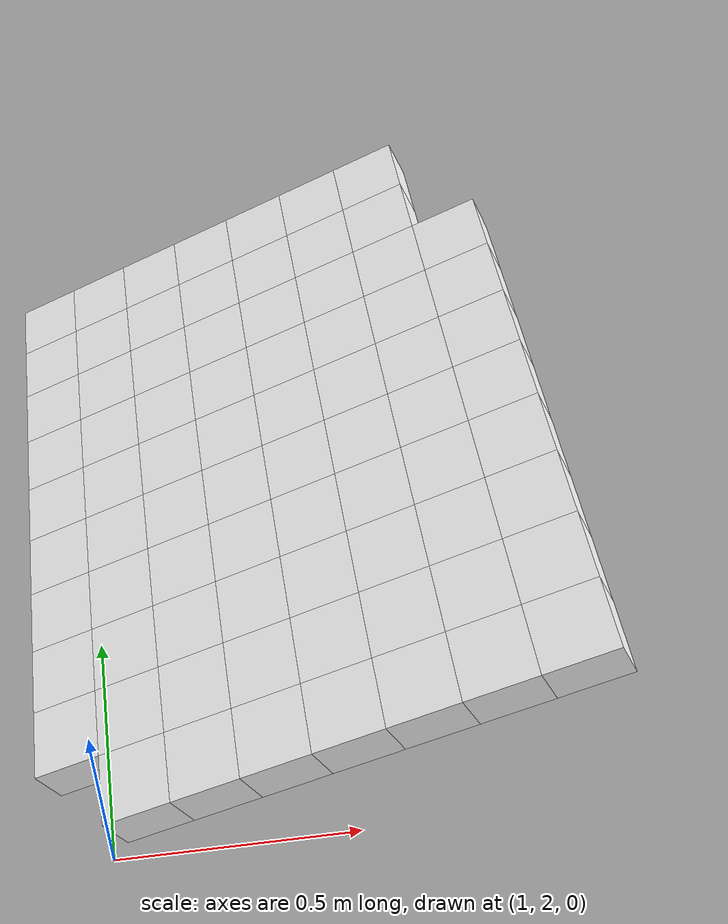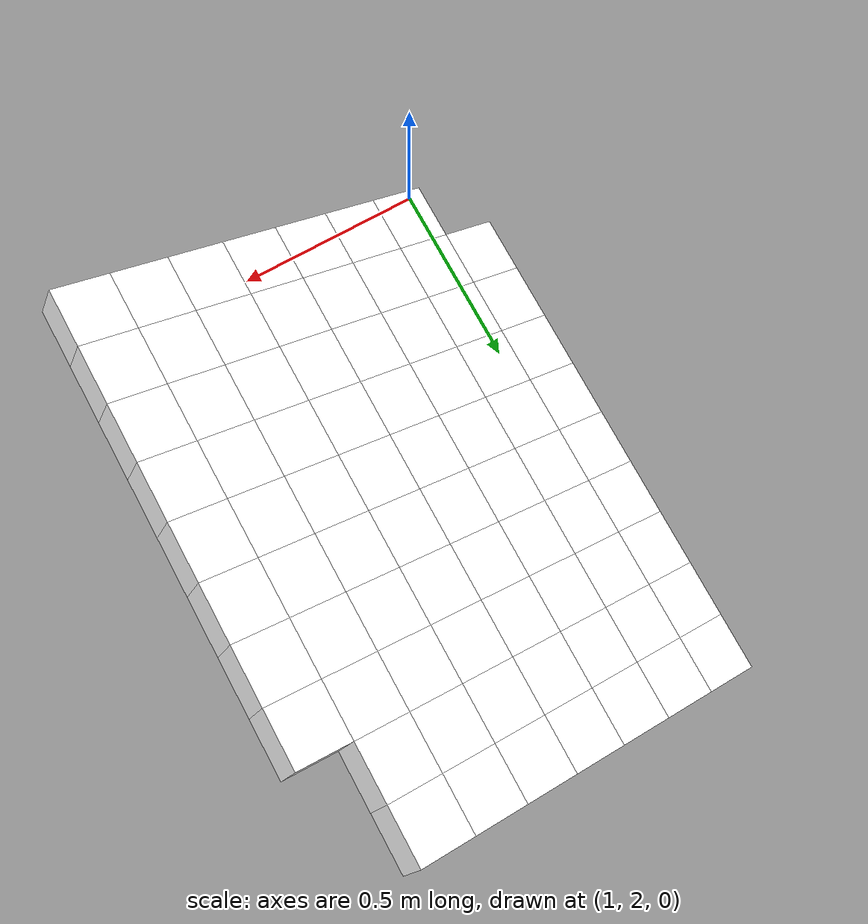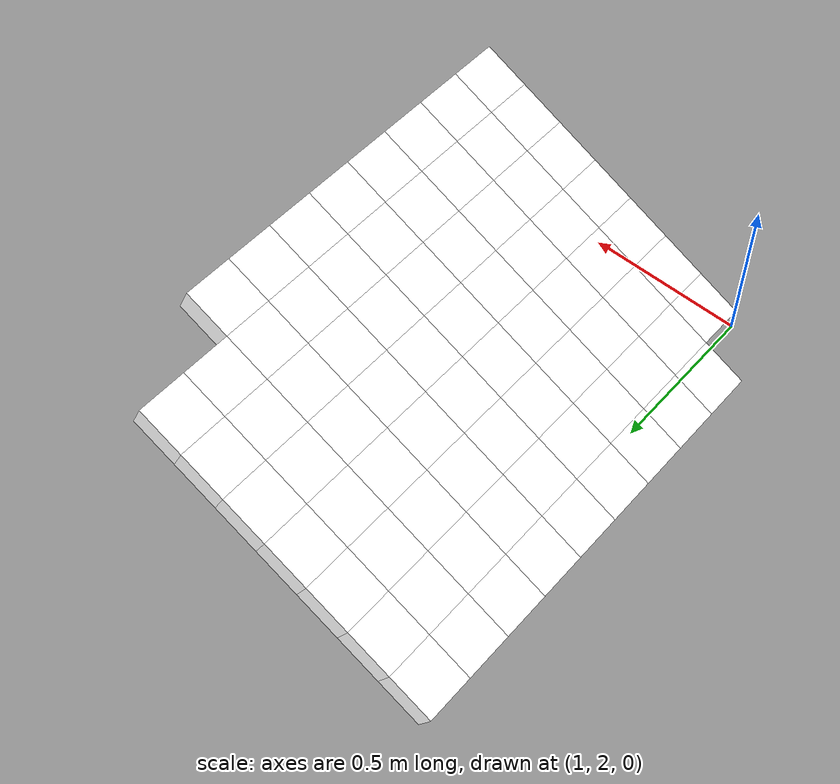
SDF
<sdf version="1.7">
 <world name="default">
  <include><uri>model://sun</uri></include>
  <model name="static_environment">
   <static>true</static>
   <link name="region_601">
    <pose>1.0762143930059413 2.0999999999999996 0.09778168674698906 0.0 -0.45 0.0</pose>
    <collision name="region_601_collision">
     <geometry><box><size>0.15 0.15 0.1</size></box></geometry>
     <surface><friction><ode><mu>1.0</mu><mu2>1.0</mu2></ode></friction></surface>
    </collision>
    <visual name="region_601_visual">
     <geometry><box><size>0.15 0.15 0.1</size></box></geometry>
     <material><ambient>1.0 1.0 1.0 1.0</ambient><diffuse>1.0 1.0 1.0 1.0</diffuse></material>
    </visual>
   </link>
   <link name="region_602">
    <pose>1.211281458358843 2.0999999999999996 0.16302651686367364 0.0 -0.45 0.0</pose>
    <collision name="region_602_collision">
     <geometry><box><size>0.15 0.15 0.1</size></box></geometry>
     <surface><friction><ode><mu>1.0</mu><mu2>1.0</mu2></ode></friction></surface>
    </collision>
    <visual name="region_602_visual">
     <geometry><box><size>0.15 0.15 0.1</size></box></geometry>
     <material><ambient>1.0 1.0 1.0 1.0</ambient><diffuse>1.0 1.0 1.0 1.0</diffuse></material>
    </visual>
   </link>
   <link name="region_603">
    <pose>1.346348523711744 2.0999999999999996 0.228271346980358 0.0 -0.45 0.0</pose>
    <collision name="region_603_collision">
     <geometry><box><size>0.15 0.15 0.1</size></box></geometry>
     <surface><friction><ode><mu>1.0</mu><mu2>1.0</mu2></ode></friction></surface>
    </collision>
    <visual name="region_603_visual">
     <geometry><box><size>0.15 0.15 0.1</size></box></geometry>
     <material><ambient>1.0 1.0 1.0 1.0</ambient><diffuse>1.0 1.0 1.0 1.0</diffuse></material>
    </visual>
   </link>
   <link name="region_604">
    <pose>1.4814155890646457 2.0999999999999996 0.2935161770970426 0.0 -0.45 0.0</pose>
    <collision name="region_604_collision">
     <geometry><box><size>0.15 0.15 0.1</size></box></geometry>
     <surface><friction><ode><mu>1.0</mu><mu2>1.0</mu2></ode></friction></surface>
    </collision>
    <visual name="region_604_visual">
     <geometry><box><size>0.15 0.15 0.1</size></box></geometry>
     <material><ambient>1.0 1.0 1.0 1.0</ambient><diffuse>1.0 1.0 1.0 1.0</diffuse></material>
    </visual>
   </link>
   <link name="region_605">
    <pose>1.6164826544175472 2.0999999999999996 0.35876100721372695 0.0 -0.45 0.0</pose>
    <collision name="region_605_collision">
     <geometry><box><size>0.15 0.15 0.1</size></box></geometry>
     <surface><friction><ode><mu>1.0</mu><mu2>1.0</mu2></ode></friction></surface>
    </collision>
    <visual name="region_605_visual">
     <geometry><box><size>0.15 0.15 0.1</size></box></geometry>
     <material><ambient>1.0 1.0 1.0 1.0</ambient><diffuse>1.0 1.0 1.0 1.0</diffuse></material>
    </visual>
   </link>
   <link name="region_606">
    <pose>1.7515497197704484 2.0999999999999996 0.42400583733041153 0.0 -0.45 0.0</pose>
    <collision name="region_606_collision">
     <geometry><box><size>0.15 0.15 0.1</size></box></geometry>
     <surface><friction><ode><mu>1.0</mu><mu2>1.0</mu2></ode></friction></surface>
    </collision>
    <visual name="region_606_visual">
     <geometry><box><size>0.15 0.15 0.1</size></box></geometry>
     <material><ambient>1.0 1.0 1.0 1.0</ambient><diffuse>1.0 1.0 1.0 1.0</diffuse></material>
    </visual>
   </link>
   <link name="region_607">
    <pose>1.88661678512335 2.0999999999999996 0.4892506674470961 0.0 -0.45 0.0</pose>
    <collision name="region_607_collision">
     <geometry><box><size>0.15 0.15 0.1</size></box></geometry>
     <surface><friction><ode><mu>1.0</mu><mu2>1.0</mu2></ode></friction></surface>
    </collision>
    <visual name="region_607_visual">
     <geometry><box><size>0.15 0.15 0.1</size></box></geometry>
     <material><ambient>1.0 1.0 1.0 1.0</ambient><diffuse>1.0 1.0 1.0 1.0</diffuse></material>
    </visual>
   </link>
   <link name="region_620">
    <pose>0.9411473276530398 2.2499999999999996 0.03253685663030448 0.0 -0.45 0.0</pose>
    <collision name="region_620_collision">
     <geometry><box><size>0.15 0.15 0.1</size></box></geometry>
     <surface><friction><ode><mu>1.0</mu><mu2>1.0</mu2></ode></friction></surface>
    </collision>
    <visual name="region_620_visual">
     <geometry><box><size>0.15 0.15 0.1</size></box></geometry>
     <material><ambient>1.0 1.0 1.0 1.0</ambient><diffuse>1.0 1.0 1.0 1.0</diffuse></material>
    </visual>
   </link>
   <link name="region_621">
    <pose>1.0762143930059413 2.2499999999999996 0.09778168674698906 0.0 -0.45 0.0</pose>
    <collision name="region_621_collision">
     <geometry><box><size>0.15 0.15 0.1</size></box></geometry>
     <surface><friction><ode><mu>1.0</mu><mu2>1.0</mu2></ode></friction></surface>
    </collision>
    <visual name="region_621_visual">
     <geometry><box><size>0.15 0.15 0.1</size></box></geometry>
     <material><ambient>1.0 1.0 1.0 1.0</ambient><diffuse>1.0 1.0 1.0 1.0</diffuse></material>
    </visual>
   </link>
   <link name="region_622">
    <pose>1.211281458358843 2.2499999999999996 0.16302651686367364 0.0 -0.45 0.0</pose>
    <collision name="region_622_collision">
     <geometry><box><size>0.15 0.15 0.1</size></box></geometry>
     <surface><friction><ode><mu>1.0</mu><mu2>1.0</mu2></ode></friction></surface>
    </collision>
    <visual name="region_622_visual">
     <geometry><box><size>0.15 0.15 0.1</size></box></geometry>
     <material><ambient>1.0 1.0 1.0 1.0</ambient><diffuse>1.0 1.0 1.0 1.0</diffuse></material>
    </visual>
   </link>
   <link name="region_623">
    <pose>1.346348523711744 2.2499999999999996 0.228271346980358 0.0 -0.45 0.0</pose>
    <collision name="region_623_collision">
     <geometry><box><size>0.15 0.15 0.1</size></box></geometry>
     <surface><friction><ode><mu>1.0</mu><mu2>1.0</mu2></ode></friction></surface>
    </collision>
    <visual name="region_623_visual">
     <geometry><box><size>0.15 0.15 0.1</size></box></geometry>
     <material><ambient>1.0 1.0 1.0 1.0</ambient><diffuse>1.0 1.0 1.0 1.0</diffuse></material>
    </visual>
   </link>
   <link name="region_624">
    <pose>1.4814155890646457 2.2499999999999996 0.2935161770970426 0.0 -0.45 0.0</pose>
    <collision name="region_624_collision">
     <geometry><box><size>0.15 0.15 0.1</size></box></geometry>
     <surface><friction><ode><mu>1.0</mu><mu2>1.0</mu2></ode></friction></surface>
    </collision>
    <visual name="region_624_visual">
     <geometry><box><size>0.15 0.15 0.1</size></box></geometry>
     <material><ambient>1.0 1.0 1.0 1.0</ambient><diffuse>1.0 1.0 1.0 1.0</diffuse></material>
    </visual>
   </link>
   <link name="region_625">
    <pose>1.6164826544175472 2.2499999999999996 0.35876100721372695 0.0 -0.45 0.0</pose>
    <collision name="region_625_collision">
     <geometry><box><size>0.15 0.15 0.1</size></box></geometry>
     <surface><friction><ode><mu>1.0</mu><mu2>1.0</mu2></ode></friction></surface>
    </collision>
    <visual name="region_625_visual">
     <geometry><box><size>0.15 0.15 0.1</size></box></geometry>
     <material><ambient>1.0 1.0 1.0 1.0</ambient><diffuse>1.0 1.0 1.0 1.0</diffuse></material>
    </visual>
   </link>
   <link name="region_626">
    <pose>1.7515497197704484 2.2499999999999996 0.42400583733041153 0.0 -0.45 0.0</pose>
    <collision name="region_626_collision">
     <geometry><box><size>0.15 0.15 0.1</size></box></geometry>
     <surface><friction><ode><mu>1.0</mu><mu2>1.0</mu2></ode></friction></surface>
    </collision>
    <visual name="region_626_visual">
     <geometry><box><size>0.15 0.15 0.1</size></box></geometry>
     <material><ambient>1.0 1.0 1.0 1.0</ambient><diffuse>1.0 1.0 1.0 1.0</diffuse></material>
    </visual>
   </link>
   <link name="region_627">
    <pose>1.88661678512335 2.2499999999999996 0.4892506674470961 0.0 -0.45 0.0</pose>
    <collision name="region_627_collision">
     <geometry><box><size>0.15 0.15 0.1</size></box></geometry>
     <surface><friction><ode><mu>1.0</mu><mu2>1.0</mu2></ode></friction></surface>
    </collision>
    <visual name="region_627_visual">
     <geometry><box><size>0.15 0.15 0.1</size></box></geometry>
     <material><ambient>1.0 1.0 1.0 1.0</ambient><diffuse>1.0 1.0 1.0 1.0</diffuse></material>
    </visual>
   </link>
   <link name="region_640">
    <pose>0.9411473276530398 2.3999999999999995 0.03253685663030448 0.0 -0.45 0.0</pose>
    <collision name="region_640_collision">
     <geometry><box><size>0.15 0.15 0.1</size></box></geometry>
     <surface><friction><ode><mu>1.0</mu><mu2>1.0</mu2></ode></friction></surface>
    </collision>
    <visual name="region_640_visual">
     <geometry><box><size>0.15 0.15 0.1</size></box></geometry>
     <material><ambient>1.0 1.0 1.0 1.0</ambient><diffuse>1.0 1.0 1.0 1.0</diffuse></material>
    </visual>
   </link>
   <link name="region_641">
    <pose>1.0762143930059413 2.3999999999999995 0.09778168674698906 0.0 -0.45 0.0</pose>
    <collision name="region_641_collision">
     <geometry><box><size>0.15 0.15 0.1</size></box></geometry>
     <surface><friction><ode><mu>1.0</mu><mu2>1.0</mu2></ode></friction></surface>
    </collision>
    <visual name="region_641_visual">
     <geometry><box><size>0.15 0.15 0.1</size></box></geometry>
     <material><ambient>1.0 1.0 1.0 1.0</ambient><diffuse>1.0 1.0 1.0 1.0</diffuse></material>
    </visual>
   </link>
   <link name="region_642">
    <pose>1.211281458358843 2.3999999999999995 0.16302651686367364 0.0 -0.45 0.0</pose>
    <collision name="region_642_collision">
     <geometry><box><size>0.15 0.15 0.1</size></box></geometry>
     <surface><friction><ode><mu>1.0</mu><mu2>1.0</mu2></ode></friction></surface>
    </collision>
    <visual name="region_642_visual">
     <geometry><box><size>0.15 0.15 0.1</size></box></geometry>
     <material><ambient>1.0 1.0 1.0 1.0</ambient><diffuse>1.0 1.0 1.0 1.0</diffuse></material>
    </visual>
   </link>
   <link name="region_643">
    <pose>1.346348523711744 2.3999999999999995 0.228271346980358 0.0 -0.45 0.0</pose>
    <collision name="region_643_collision">
     <geometry><box><size>0.15 0.15 0.1</size></box></geometry>
     <surface><friction><ode><mu>1.0</mu><mu2>1.0</mu2></ode></friction></surface>
    </collision>
    <visual name="region_643_visual">
     <geometry><box><size>0.15 0.15 0.1</size></box></geometry>
     <material><ambient>1.0 1.0 1.0 1.0</ambient><diffuse>1.0 1.0 1.0 1.0</diffuse></material>
    </visual>
   </link>
   <link name="region_644">
    <pose>1.4814155890646457 2.3999999999999995 0.2935161770970426 0.0 -0.45 0.0</pose>
    <collision name="region_644_collision">
     <geometry><box><size>0.15 0.15 0.1</size></box></geometry>
     <surface><friction><ode><mu>1.0</mu><mu2>1.0</mu2></ode></friction></surface>
    </collision>
    <visual name="region_644_visual">
     <geometry><box><size>0.15 0.15 0.1</size></box></geometry>
     <material><ambient>1.0 1.0 1.0 1.0</ambient><diffuse>1.0 1.0 1.0 1.0</diffuse></material>
    </visual>
   </link>
   <link name="region_645">
    <pose>1.6164826544175472 2.3999999999999995 0.35876100721372695 0.0 -0.45 0.0</pose>
    <collision name="region_645_collision">
     <geometry><box><size>0.15 0.15 0.1</size></box></geometry>
     <surface><friction><ode><mu>1.0</mu><mu2>1.0</mu2></ode></friction></surface>
    </collision>
    <visual name="region_645_visual">
     <geometry><box><size>0.15 0.15 0.1</size></box></geometry>
     <material><ambient>1.0 1.0 1.0 1.0</ambient><diffuse>1.0 1.0 1.0 1.0</diffuse></material>
    </visual>
   </link>
   <link name="region_646">
    <pose>1.7515497197704484 2.3999999999999995 0.42400583733041153 0.0 -0.45 0.0</pose>
    <collision name="region_646_collision">
     <geometry><box><size>0.15 0.15 0.1</size></box></geometry>
     <surface><friction><ode><mu>1.0</mu><mu2>1.0</mu2></ode></friction></surface>
    </collision>
    <visual name="region_646_visual">
     <geometry><box><size>0.15 0.15 0.1</size></box></geometry>
     <material><ambient>1.0 1.0 1.0 1.0</ambient><diffuse>1.0 1.0 1.0 1.0</diffuse></material>
    </visual>
   </link>
   <link name="region_647">
    <pose>1.88661678512335 2.3999999999999995 0.4892506674470961 0.0 -0.45 0.0</pose>
    <collision name="region_647_collision">
     <geometry><box><size>0.15 0.15 0.1</size></box></geometry>
     <surface><friction><ode><mu>1.0</mu><mu2>1.0</mu2></ode></friction></surface>
    </collision>
    <visual name="region_647_visual">
     <geometry><box><size>0.15 0.15 0.1</size></box></geometry>
     <material><ambient>1.0 1.0 1.0 1.0</ambient><diffuse>1.0 1.0 1.0 1.0</diffuse></material>
    </visual>
   </link>
   <link name="region_660">
    <pose>0.9411473276530398 2.5499999999999994 0.03253685663030448 0.0 -0.45 0.0</pose>
    <collision name="region_660_collision">
     <geometry><box><size>0.15 0.15 0.1</size></box></geometry>
     <surface><friction><ode><mu>1.0</mu><mu2>1.0</mu2></ode></friction></surface>
    </collision>
    <visual name="region_660_visual">
     <geometry><box><size>0.15 0.15 0.1</size></box></geometry>
     <material><ambient>1.0 1.0 1.0 1.0</ambient><diffuse>1.0 1.0 1.0 1.0</diffuse></material>
    </visual>
   </link>
   <link name="region_661">
    <pose>1.0762143930059413 2.5499999999999994 0.09778168674698906 0.0 -0.45 0.0</pose>
    <collision name="region_661_collision">
     <geometry><box><size>0.15 0.15 0.1</size></box></geometry>
     <surface><friction><ode><mu>1.0</mu><mu2>1.0</mu2></ode></friction></surface>
    </collision>
    <visual name="region_661_visual">
     <geometry><box><size>0.15 0.15 0.1</size></box></geometry>
     <material><ambient>1.0 1.0 1.0 1.0</ambient><diffuse>1.0 1.0 1.0 1.0</diffuse></material>
    </visual>
   </link>
   <link name="region_662">
    <pose>1.211281458358843 2.5499999999999994 0.16302651686367364 0.0 -0.45 0.0</pose>
    <collision name="region_662_collision">
     <geometry><box><size>0.15 0.15 0.1</size></box></geometry>
     <surface><friction><ode><mu>1.0</mu><mu2>1.0</mu2></ode></friction></surface>
    </collision>
    <visual name="region_662_visual">
     <geometry><box><size>0.15 0.15 0.1</size></box></geometry>
     <material><ambient>1.0 1.0 1.0 1.0</ambient><diffuse>1.0 1.0 1.0 1.0</diffuse></material>
    </visual>
   </link>
   <link name="region_663">
    <pose>1.346348523711744 2.5499999999999994 0.228271346980358 0.0 -0.45 0.0</pose>
    <collision name="region_663_collision">
     <geometry><box><size>0.15 0.15 0.1</size></box></geometry>
     <surface><friction><ode><mu>1.0</mu><mu2>1.0</mu2></ode></friction></surface>
    </collision>
    <visual name="region_663_visual">
     <geometry><box><size>0.15 0.15 0.1</size></box></geometry>
     <material><ambient>1.0 1.0 1.0 1.0</ambient><diffuse>1.0 1.0 1.0 1.0</diffuse></material>
    </visual>
   </link>
   <link name="region_664">
    <pose>1.4814155890646457 2.5499999999999994 0.2935161770970426 0.0 -0.45 0.0</pose>
    <collision name="region_664_collision">
     <geometry><box><size>0.15 0.15 0.1</size></box></geometry>
     <surface><friction><ode><mu>1.0</mu><mu2>1.0</mu2></ode></friction></surface>
    </collision>
    <visual name="region_664_visual">
     <geometry><box><size>0.15 0.15 0.1</size></box></geometry>
     <material><ambient>1.0 1.0 1.0 1.0</ambient><diffuse>1.0 1.0 1.0 1.0</diffuse></material>
    </visual>
   </link>
   <link name="region_665">
    <pose>1.6164826544175472 2.5499999999999994 0.35876100721372695 0.0 -0.45 0.0</pose>
    <collision name="region_665_collision">
     <geometry><box><size>0.15 0.15 0.1</size></box></geometry>
     <surface><friction><ode><mu>1.0</mu><mu2>1.0</mu2></ode></friction></surface>
    </collision>
    <visual name="region_665_visual">
     <geometry><box><size>0.15 0.15 0.1</size></box></geometry>
     <material><ambient>1.0 1.0 1.0 1.0</ambient><diffuse>1.0 1.0 1.0 1.0</diffuse></material>
    </visual>
   </link>
   <link name="region_666">
    <pose>1.7515497197704484 2.5499999999999994 0.42400583733041153 0.0 -0.45 0.0</pose>
    <collision name="region_666_collision">
     <geometry><box><size>0.15 0.15 0.1</size></box></geometry>
     <surface><friction><ode><mu>1.0</mu><mu2>1.0</mu2></ode></friction></surface>
    </collision>
    <visual name="region_666_visual">
     <geometry><box><size>0.15 0.15 0.1</size></box></geometry>
     <material><ambient>1.0 1.0 1.0 1.0</ambient><diffuse>1.0 1.0 1.0 1.0</diffuse></material>
    </visual>
   </link>
   <link name="region_667">
    <pose>1.88661678512335 2.5499999999999994 0.4892506674470961 0.0 -0.45 0.0</pose>
    <collision name="region_667_collision">
     <geometry><box><size>0.15 0.15 0.1</size></box></geometry>
     <surface><friction><ode><mu>1.0</mu><mu2>1.0</mu2></ode></friction></surface>
    </collision>
    <visual name="region_667_visual">
     <geometry><box><size>0.15 0.15 0.1</size></box></geometry>
     <material><ambient>1.0 1.0 1.0 1.0</ambient><diffuse>1.0 1.0 1.0 1.0</diffuse></material>
    </visual>
   </link>
   <link name="region_680">
    <pose>0.9411473276530398 2.6999999999999997 0.03253685663030448 0.0 -0.45 0.0</pose>
    <collision name="region_680_collision">
     <geometry><box><size>0.15 0.15 0.1</size></box></geometry>
     <surface><friction><ode><mu>1.0</mu><mu2>1.0</mu2></ode></friction></surface>
    </collision>
    <visual name="region_680_visual">
     <geometry><box><size>0.15 0.15 0.1</size></box></geometry>
     <material><ambient>1.0 1.0 1.0 1.0</ambient><diffuse>1.0 1.0 1.0 1.0</diffuse></material>
    </visual>
   </link>
   <link name="region_681">
    <pose>1.0762143930059413 2.6999999999999997 0.09778168674698906 0.0 -0.45 0.0</pose>
    <collision name="region_681_collision">
     <geometry><box><size>0.15 0.15 0.1</size></box></geometry>
     <surface><friction><ode><mu>1.0</mu><mu2>1.0</mu2></ode></friction></surface>
    </collision>
    <visual name="region_681_visual">
     <geometry><box><size>0.15 0.15 0.1</size></box></geometry>
     <material><ambient>1.0 1.0 1.0 1.0</ambient><diffuse>1.0 1.0 1.0 1.0</diffuse></material>
    </visual>
   </link>
   <link name="region_682">
    <pose>1.211281458358843 2.6999999999999997 0.16302651686367364 0.0 -0.45 0.0</pose>
    <collision name="region_682_collision">
     <geometry><box><size>0.15 0.15 0.1</size></box></geometry>
     <surface><friction><ode><mu>1.0</mu><mu2>1.0</mu2></ode></friction></surface>
    </collision>
    <visual name="region_682_visual">
     <geometry><box><size>0.15 0.15 0.1</size></box></geometry>
     <material><ambient>1.0 1.0 1.0 1.0</ambient><diffuse>1.0 1.0 1.0 1.0</diffuse></material>
    </visual>
   </link>
   <link name="region_683">
    <pose>1.346348523711744 2.6999999999999997 0.228271346980358 0.0 -0.45 0.0</pose>
    <collision name="region_683_collision">
     <geometry><box><size>0.15 0.15 0.1</size></box></geometry>
     <surface><friction><ode><mu>1.0</mu><mu2>1.0</mu2></ode></friction></surface>
    </collision>
    <visual name="region_683_visual">
     <geometry><box><size>0.15 0.15 0.1</size></box></geometry>
     <material><ambient>1.0 1.0 1.0 1.0</ambient><diffuse>1.0 1.0 1.0 1.0</diffuse></material>
    </visual>
   </link>
   <link name="region_684">
    <pose>1.4814155890646457 2.6999999999999997 0.2935161770970426 0.0 -0.45 0.0</pose>
    <collision name="region_684_collision">
     <geometry><box><size>0.15 0.15 0.1</size></box></geometry>
     <surface><friction><ode><mu>1.0</mu><mu2>1.0</mu2></ode></friction></surface>
    </collision>
    <visual name="region_684_visual">
     <geometry><box><size>0.15 0.15 0.1</size></box></geometry>
     <material><ambient>1.0 1.0 1.0 1.0</ambient><diffuse>1.0 1.0 1.0 1.0</diffuse></material>
    </visual>
   </link>
   <link name="region_685">
    <pose>1.6164826544175472 2.6999999999999997 0.35876100721372695 0.0 -0.45 0.0</pose>
    <collision name="region_685_collision">
     <geometry><box><size>0.15 0.15 0.1</size></box></geometry>
     <surface><friction><ode><mu>1.0</mu><mu2>1.0</mu2></ode></friction></surface>
    </collision>
    <visual name="region_685_visual">
     <geometry><box><size>0.15 0.15 0.1</size></box></geometry>
     <material><ambient>1.0 1.0 1.0 1.0</ambient><diffuse>1.0 1.0 1.0 1.0</diffuse></material>
    </visual>
   </link>
   <link name="region_686">
    <pose>1.7515497197704484 2.6999999999999997 0.42400583733041153 0.0 -0.45 0.0</pose>
    <collision name="region_686_collision">
     <geometry><box><size>0.15 0.15 0.1</size></box></geometry>
     <surface><friction><ode><mu>1.0</mu><mu2>1.0</mu2></ode></friction></surface>
    </collision>
    <visual name="region_686_visual">
     <geometry><box><size>0.15 0.15 0.1</size></box></geometry>
     <material><ambient>1.0 1.0 1.0 1.0</ambient><diffuse>1.0 1.0 1.0 1.0</diffuse></material>
    </visual>
   </link>
   <link name="region_687">
    <pose>1.88661678512335 2.6999999999999997 0.4892506674470961 0.0 -0.45 0.0</pose>
    <collision name="region_687_collision">
     <geometry><box><size>0.15 0.15 0.1</size></box></geometry>
     <surface><friction><ode><mu>1.0</mu><mu2>1.0</mu2></ode></friction></surface>
    </collision>
    <visual name="region_687_visual">
     <geometry><box><size>0.15 0.15 0.1</size></box></geometry>
     <material><ambient>1.0 1.0 1.0 1.0</ambient><diffuse>1.0 1.0 1.0 1.0</diffuse></material>
    </visual>
   </link>
   <link name="region_700">
    <pose>0.9411473276530398 2.8499999999999996 0.03253685663030448 0.0 -0.45 0.0</pose>
    <collision name="region_700_collision">
     <geometry><box><size>0.15 0.15 0.1</size></box></geometry>
     <surface><friction><ode><mu>1.0</mu><mu2>1.0</mu2></ode></friction></surface>
    </collision>
    <visual name="region_700_visual">
     <geometry><box><size>0.15 0.15 0.1</size></box></geometry>
     <material><ambient>1.0 1.0 1.0 1.0</ambient><diffuse>1.0 1.0 1.0 1.0</diffuse></material>
    </visual>
   </link>
   <link name="region_701">
    <pose>1.0762143930059413 2.8499999999999996 0.09778168674698906 0.0 -0.45 0.0</pose>
    <collision name="region_701_collision">
     <geometry><box><size>0.15 0.15 0.1</size></box></geometry>
     <surface><friction><ode><mu>1.0</mu><mu2>1.0</mu2></ode></friction></surface>
    </collision>
    <visual name="region_701_visual">
     <geometry><box><size>0.15 0.15 0.1</size></box></geometry>
     <material><ambient>1.0 1.0 1.0 1.0</ambient><diffuse>1.0 1.0 1.0 1.0</diffuse></material>
    </visual>
   </link>
   <link name="region_702">
    <pose>1.211281458358843 2.8499999999999996 0.16302651686367364 0.0 -0.45 0.0</pose>
    <collision name="region_702_collision">
     <geometry><box><size>0.15 0.15 0.1</size></box></geometry>
     <surface><friction><ode><mu>1.0</mu><mu2>1.0</mu2></ode></friction></surface>
    </collision>
    <visual name="region_702_visual">
     <geometry><box><size>0.15 0.15 0.1</size></box></geometry>
     <material><ambient>1.0 1.0 1.0 1.0</ambient><diffuse>1.0 1.0 1.0 1.0</diffuse></material>
    </visual>
   </link>
   <link name="region_703">
    <pose>1.346348523711744 2.8499999999999996 0.228271346980358 0.0 -0.45 0.0</pose>
    <collision name="region_703_collision">
     <geometry><box><size>0.15 0.15 0.1</size></box></geometry>
     <surface><friction><ode><mu>1.0</mu><mu2>1.0</mu2></ode></friction></surface>
    </collision>
    <visual name="region_703_visual">
     <geometry><box><size>0.15 0.15 0.1</size></box></geometry>
     <material><ambient>1.0 1.0 1.0 1.0</ambient><diffuse>1.0 1.0 1.0 1.0</diffuse></material>
    </visual>
   </link>
   <link name="region_704">
    <pose>1.4814155890646457 2.8499999999999996 0.2935161770970426 0.0 -0.45 0.0</pose>
    <collision name="region_704_collision">
     <geometry><box><size>0.15 0.15 0.1</size></box></geometry>
     <surface><friction><ode><mu>1.0</mu><mu2>1.0</mu2></ode></friction></surface>
    </collision>
    <visual name="region_704_visual">
     <geometry><box><size>0.15 0.15 0.1</size></box></geometry>
     <material><ambient>1.0 1.0 1.0 1.0</ambient><diffuse>1.0 1.0 1.0 1.0</diffuse></material>
    </visual>
   </link>
   <link name="region_705">
    <pose>1.6164826544175472 2.8499999999999996 0.35876100721372695 0.0 -0.45 0.0</pose>
    <collision name="region_705_collision">
     <geometry><box><size>0.15 0.15 0.1</size></box></geometry>
     <surface><friction><ode><mu>1.0</mu><mu2>1.0</mu2></ode></friction></surface>
    </collision>
    <visual name="region_705_visual">
     <geometry><box><size>0.15 0.15 0.1</size></box></geometry>
     <material><ambient>1.0 1.0 1.0 1.0</ambient><diffuse>1.0 1.0 1.0 1.0</diffuse></material>
    </visual>
   </link>
   <link name="region_706">
    <pose>1.7515497197704484 2.8499999999999996 0.42400583733041153 0.0 -0.45 0.0</pose>
    <collision name="region_706_collision">
     <geometry><box><size>0.15 0.15 0.1</size></box></geometry>
     <surface><friction><ode><mu>1.0</mu><mu2>1.0</mu2></ode></friction></surface>
    </collision>
    <visual name="region_706_visual">
     <geometry><box><size>0.15 0.15 0.1</size></box></geometry>
     <material><ambient>1.0 1.0 1.0 1.0</ambient><diffuse>1.0 1.0 1.0 1.0</diffuse></material>
    </visual>
   </link>
   <link name="region_707">
    <pose>1.88661678512335 2.8499999999999996 0.4892506674470961 0.0 -0.45 0.0</pose>
    <collision name="region_707_collision">
     <geometry><box><size>0.15 0.15 0.1</size></box></geometry>
     <surface><friction><ode><mu>1.0</mu><mu2>1.0</mu2></ode></friction></surface>
    </collision>
    <visual name="region_707_visual">
     <geometry><box><size>0.15 0.15 0.1</size></box></geometry>
     <material><ambient>1.0 1.0 1.0 1.0</ambient><diffuse>1.0 1.0 1.0 1.0</diffuse></material>
    </visual>
   </link>
   <link name="region_720">
    <pose>0.9411473276530398 2.9999999999999996 0.03253685663030448 0.0 -0.45 0.0</pose>
    <collision name="region_720_collision">
     <geometry><box><size>0.15 0.15 0.1</size></box></geometry>
     <surface><friction><ode><mu>1.0</mu><mu2>1.0</mu2></ode></friction></surface>
    </collision>
    <visual name="region_720_visual">
     <geometry><box><size>0.15 0.15 0.1</size></box></geometry>
     <material><ambient>1.0 1.0 1.0 1.0</ambient><diffuse>1.0 1.0 1.0 1.0</diffuse></material>
    </visual>
   </link>
   <link name="region_721">
    <pose>1.0762143930059413 2.9999999999999996 0.09778168674698906 0.0 -0.45 0.0</pose>
    <collision name="region_721_collision">
     <geometry><box><size>0.15 0.15 0.1</size></box></geometry>
     <surface><friction><ode><mu>1.0</mu><mu2>1.0</mu2></ode></friction></surface>
    </collision>
    <visual name="region_721_visual">
     <geometry><box><size>0.15 0.15 0.1</size></box></geometry>
     <material><ambient>1.0 1.0 1.0 1.0</ambient><diffuse>1.0 1.0 1.0 1.0</diffuse></material>
    </visual>
   </link>
   <link name="region_722">
    <pose>1.211281458358843 2.9999999999999996 0.16302651686367364 0.0 -0.45 0.0</pose>
    <collision name="region_722_collision">
     <geometry><box><size>0.15 0.15 0.1</size></box></geometry>
     <surface><friction><ode><mu>1.0</mu><mu2>1.0</mu2></ode></friction></surface>
    </collision>
    <visual name="region_722_visual">
     <geometry><box><size>0.15 0.15 0.1</size></box></geometry>
     <material><ambient>1.0 1.0 1.0 1.0</ambient><diffuse>1.0 1.0 1.0 1.0</diffuse></material>
    </visual>
   </link>
   <link name="region_723">
    <pose>1.346348523711744 2.9999999999999996 0.228271346980358 0.0 -0.45 0.0</pose>
    <collision name="region_723_collision">
     <geometry><box><size>0.15 0.15 0.1</size></box></geometry>
     <surface><friction><ode><mu>1.0</mu><mu2>1.0</mu2></ode></friction></surface>
    </collision>
    <visual name="region_723_visual">
     <geometry><box><size>0.15 0.15 0.1</size></box></geometry>
     <material><ambient>1.0 1.0 1.0 1.0</ambient><diffuse>1.0 1.0 1.0 1.0</diffuse></material>
    </visual>
   </link>
   <link name="region_724">
    <pose>1.4814155890646457 2.9999999999999996 0.2935161770970426 0.0 -0.45 0.0</pose>
    <collision name="region_724_collision">
     <geometry><box><size>0.15 0.15 0.1</size></box></geometry>
     <surface><friction><ode><mu>1.0</mu><mu2>1.0</mu2></ode></friction></surface>
    </collision>
    <visual name="region_724_visual">
     <geometry><box><size>0.15 0.15 0.1</size></box></geometry>
     <material><ambient>1.0 1.0 1.0 1.0</ambient><diffuse>1.0 1.0 1.0 1.0</diffuse></material>
    </visual>
   </link>
   <link name="region_725">
    <pose>1.6164826544175472 2.9999999999999996 0.35876100721372695 0.0 -0.45 0.0</pose>
    <collision name="region_725_collision">
     <geometry><box><size>0.15 0.15 0.1</size></box></geometry>
     <surface><friction><ode><mu>1.0</mu><mu2>1.0</mu2></ode></friction></surface>
    </collision>
    <visual name="region_725_visual">
     <geometry><box><size>0.15 0.15 0.1</size></box></geometry>
     <material><ambient>1.0 1.0 1.0 1.0</ambient><diffuse>1.0 1.0 1.0 1.0</diffuse></material>
    </visual>
   </link>
   <link name="region_726">
    <pose>1.7515497197704484 2.9999999999999996 0.42400583733041153 0.0 -0.45 0.0</pose>
    <collision name="region_726_collision">
     <geometry><box><size>0.15 0.15 0.1</size></box></geometry>
     <surface><friction><ode><mu>1.0</mu><mu2>1.0</mu2></ode></friction></surface>
    </collision>
    <visual name="region_726_visual">
     <geometry><box><size>0.15 0.15 0.1</size></box></geometry>
     <material><ambient>1.0 1.0 1.0 1.0</ambient><diffuse>1.0 1.0 1.0 1.0</diffuse></material>
    </visual>
   </link>
   <link name="region_727">
    <pose>1.88661678512335 2.9999999999999996 0.4892506674470961 0.0 -0.45 0.0</pose>
    <collision name="region_727_collision">
     <geometry><box><size>0.15 0.15 0.1</size></box></geometry>
     <surface><friction><ode><mu>1.0</mu><mu2>1.0</mu2></ode></friction></surface>
    </collision>
    <visual name="region_727_visual">
     <geometry><box><size>0.15 0.15 0.1</size></box></geometry>
     <material><ambient>1.0 1.0 1.0 1.0</ambient><diffuse>1.0 1.0 1.0 1.0</diffuse></material>
    </visual>
   </link>
   <link name="region_740">
    <pose>0.9411473276530398 3.1499999999999995 0.03253685663030448 0.0 -0.45 0.0</pose>
    <collision name="region_740_collision">
     <geometry><box><size>0.15 0.15 0.1</size></box></geometry>
     <surface><friction><ode><mu>1.0</mu><mu2>1.0</mu2></ode></friction></surface>
    </collision>
    <visual name="region_740_visual">
     <geometry><box><size>0.15 0.15 0.1</size></box></geometry>
     <material><ambient>1.0 1.0 1.0 1.0</ambient><diffuse>1.0 1.0 1.0 1.0</diffuse></material>
    </visual>
   </link>
   <link name="region_741">
    <pose>1.0762143930059413 3.1499999999999995 0.09778168674698906 0.0 -0.45 0.0</pose>
    <collision name="region_741_collision">
     <geometry><box><size>0.15 0.15 0.1</size></box></geometry>
     <surface><friction><ode><mu>1.0</mu><mu2>1.0</mu2></ode></friction></surface>
    </collision>
    <visual name="region_741_visual">
     <geometry><box><size>0.15 0.15 0.1</size></box></geometry>
     <material><ambient>1.0 1.0 1.0 1.0</ambient><diffuse>1.0 1.0 1.0 1.0</diffuse></material>
    </visual>
   </link>
   <link name="region_742">
    <pose>1.211281458358843 3.1499999999999995 0.16302651686367364 0.0 -0.45 0.0</pose>
    <collision name="region_742_collision">
     <geometry><box><size>0.15 0.15 0.1</size></box></geometry>
     <surface><friction><ode><mu>1.0</mu><mu2>1.0</mu2></ode></friction></surface>
    </collision>
    <visual name="region_742_visual">
     <geometry><box><size>0.15 0.15 0.1</size></box></geometry>
     <material><ambient>1.0 1.0 1.0 1.0</ambient><diffuse>1.0 1.0 1.0 1.0</diffuse></material>
    </visual>
   </link>
   <link name="region_743">
    <pose>1.346348523711744 3.1499999999999995 0.228271346980358 0.0 -0.45 0.0</pose>
    <collision name="region_743_collision">
     <geometry><box><size>0.15 0.15 0.1</size></box></geometry>
     <surface><friction><ode><mu>1.0</mu><mu2>1.0</mu2></ode></friction></surface>
    </collision>
    <visual name="region_743_visual">
     <geometry><box><size>0.15 0.15 0.1</size></box></geometry>
     <material><ambient>1.0 1.0 1.0 1.0</ambient><diffuse>1.0 1.0 1.0 1.0</diffuse></material>
    </visual>
   </link>
   <link name="region_744">
    <pose>1.4814155890646457 3.1499999999999995 0.2935161770970426 0.0 -0.45 0.0</pose>
    <collision name="region_744_collision">
     <geometry><box><size>0.15 0.15 0.1</size></box></geometry>
     <surface><friction><ode><mu>1.0</mu><mu2>1.0</mu2></ode></friction></surface>
    </collision>
    <visual name="region_744_visual">
     <geometry><box><size>0.15 0.15 0.1</size></box></geometry>
     <material><ambient>1.0 1.0 1.0 1.0</ambient><diffuse>1.0 1.0 1.0 1.0</diffuse></material>
    </visual>
   </link>
   <link name="region_745">
    <pose>1.6164826544175472 3.1499999999999995 0.35876100721372695 0.0 -0.45 0.0</pose>
    <collision name="region_745_collision">
     <geometry><box><size>0.15 0.15 0.1</size></box></geometry>
     <surface><friction><ode><mu>1.0</mu><mu2>1.0</mu2></ode></friction></surface>
    </collision>
    <visual name="region_745_visual">
     <geometry><box><size>0.15 0.15 0.1</size></box></geometry>
     <material><ambient>1.0 1.0 1.0 1.0</ambient><diffuse>1.0 1.0 1.0 1.0</diffuse></material>
    </visual>
   </link>
   <link name="region_746">
    <pose>1.7515497197704484 3.1499999999999995 0.42400583733041153 0.0 -0.45 0.0</pose>
    <collision name="region_746_collision">
     <geometry><box><size>0.15 0.15 0.1</size></box></geometry>
     <surface><friction><ode><mu>1.0</mu><mu2>1.0</mu2></ode></friction></surface>
    </collision>
    <visual name="region_746_visual">
     <geometry><box><size>0.15 0.15 0.1</size></box></geometry>
     <material><ambient>1.0 1.0 1.0 1.0</ambient><diffuse>1.0 1.0 1.0 1.0</diffuse></material>
    </visual>
   </link>
   <link name="region_747">
    <pose>1.88661678512335 3.1499999999999995 0.4892506674470961 0.0 -0.45 0.0</pose>
    <collision name="region_747_collision">
     <geometry><box><size>0.15 0.15 0.1</size></box></geometry>
     <surface><friction><ode><mu>1.0</mu><mu2>1.0</mu2></ode></friction></surface>
    </collision>
    <visual name="region_747_visual">
     <geometry><box><size>0.15 0.15 0.1</size></box></geometry>
     <material><ambient>1.0 1.0 1.0 1.0</ambient><diffuse>1.0 1.0 1.0 1.0</diffuse></material>
    </visual>
   </link>
   <link name="region_760">
    <pose>0.9411473276530398 3.2999999999999994 0.03253685663030448 0.0 -0.45 0.0</pose>
    <collision name="region_760_collision">
     <geometry><box><size>0.15 0.15 0.1</size></box></geometry>
     <surface><friction><ode><mu>1.0</mu><mu2>1.0</mu2></ode></friction></surface>
    </collision>
    <visual name="region_760_visual">
     <geometry><box><size>0.15 0.15 0.1</size></box></geometry>
     <material><ambient>1.0 1.0 1.0 1.0</ambient><diffuse>1.0 1.0 1.0 1.0</diffuse></material>
    </visual>
   </link>
   <link name="region_761">
    <pose>1.0762143930059413 3.2999999999999994 0.09778168674698906 0.0 -0.45 0.0</pose>
    <collision name="region_761_collision">
     <geometry><box><size>0.15 0.15 0.1</size></box></geometry>
     <surface><friction><ode><mu>1.0</mu><mu2>1.0</mu2></ode></friction></surface>
    </collision>
    <visual name="region_761_visual">
     <geometry><box><size>0.15 0.15 0.1</size></box></geometry>
     <material><ambient>1.0 1.0 1.0 1.0</ambient><diffuse>1.0 1.0 1.0 1.0</diffuse></material>
    </visual>
   </link>
   <link name="region_762">
    <pose>1.211281458358843 3.2999999999999994 0.16302651686367364 0.0 -0.45 0.0</pose>
    <collision name="region_762_collision">
     <geometry><box><size>0.15 0.15 0.1</size></box></geometry>
     <surface><friction><ode><mu>1.0</mu><mu2>1.0</mu2></ode></friction></surface>
    </collision>
    <visual name="region_762_visual">
     <geometry><box><size>0.15 0.15 0.1</size></box></geometry>
     <material><ambient>1.0 1.0 1.0 1.0</ambient><diffuse>1.0 1.0 1.0 1.0</diffuse></material>
    </visual>
   </link>
   <link name="region_763">
    <pose>1.346348523711744 3.2999999999999994 0.228271346980358 0.0 -0.45 0.0</pose>
    <collision name="region_763_collision">
     <geometry><box><size>0.15 0.15 0.1</size></box></geometry>
     <surface><friction><ode><mu>1.0</mu><mu2>1.0</mu2></ode></friction></surface>
    </collision>
    <visual name="region_763_visual">
     <geometry><box><size>0.15 0.15 0.1</size></box></geometry>
     <material><ambient>1.0 1.0 1.0 1.0</ambient><diffuse>1.0 1.0 1.0 1.0</diffuse></material>
    </visual>
   </link>
   <link name="region_764">
    <pose>1.4814155890646457 3.2999999999999994 0.2935161770970426 0.0 -0.45 0.0</pose>
    <collision name="region_764_collision">
     <geometry><box><size>0.15 0.15 0.1</size></box></geometry>
     <surface><friction><ode><mu>1.0</mu><mu2>1.0</mu2></ode></friction></surface>
    </collision>
    <visual name="region_764_visual">
     <geometry><box><size>0.15 0.15 0.1</size></box></geometry>
     <material><ambient>1.0 1.0 1.0 1.0</ambient><diffuse>1.0 1.0 1.0 1.0</diffuse></material>
    </visual>
   </link>
   <link name="region_765">
    <pose>1.6164826544175472 3.2999999999999994 0.35876100721372695 0.0 -0.45 0.0</pose>
    <collision name="region_765_collision">
     <geometry><box><size>0.15 0.15 0.1</size></box></geometry>
     <surface><friction><ode><mu>1.0</mu><mu2>1.0</mu2></ode></friction></surface>
    </collision>
    <visual name="region_765_visual">
     <geometry><box><size>0.15 0.15 0.1</size></box></geometry>
     <material><ambient>1.0 1.0 1.0 1.0</ambient><diffuse>1.0 1.0 1.0 1.0</diffuse></material>
    </visual>
   </link>
   <link name="region_766">
    <pose>1.7515497197704484 3.2999999999999994 0.42400583733041153 0.0 -0.45 0.0</pose>
    <collision name="region_766_collision">
     <geometry><box><size>0.15 0.15 0.1</size></box></geometry>
     <surface><friction><ode><mu>1.0</mu><mu2>1.0</mu2></ode></friction></surface>
    </collision>
    <visual name="region_766_visual">
     <geometry><box><size>0.15 0.15 0.1</size></box></geometry>
     <material><ambient>1.0 1.0 1.0 1.0</ambient><diffuse>1.0 1.0 1.0 1.0</diffuse></material>
    </visual>
   </link>
   <link name="region_780">
    <pose>0.9411473276530398 3.4499999999999993 0.03253685663030448 0.0 -0.45 0.0</pose>
    <collision name="region_780_collision">
     <geometry><box><size>0.15 0.15 0.1</size></box></geometry>
     <surface><friction><ode><mu>1.0</mu><mu2>1.0</mu2></ode></friction></surface>
    </collision>
    <visual name="region_780_visual">
     <geometry><box><size>0.15 0.15 0.1</size></box></geometry>
     <material><ambient>1.0 1.0 1.0 1.0</ambient><diffuse>1.0 1.0 1.0 1.0</diffuse></material>
    </visual>
   </link>
   <link name="region_781">
    <pose>1.0762143930059413 3.4499999999999993 0.09778168674698906 0.0 -0.45 0.0</pose>
    <collision name="region_781_collision">
     <geometry><box><size>0.15 0.15 0.1</size></box></geometry>
     <surface><friction><ode><mu>1.0</mu><mu2>1.0</mu2></ode></friction></surface>
    </collision>
    <visual name="region_781_visual">
     <geometry><box><size>0.15 0.15 0.1</size></box></geometry>
     <material><ambient>1.0 1.0 1.0 1.0</ambient><diffuse>1.0 1.0 1.0 1.0</diffuse></material>
    </visual>
   </link>
   <link name="region_782">
    <pose>1.211281458358843 3.4499999999999993 0.16302651686367364 0.0 -0.45 0.0</pose>
    <collision name="region_782_collision">
     <geometry><box><size>0.15 0.15 0.1</size></box></geometry>
     <surface><friction><ode><mu>1.0</mu><mu2>1.0</mu2></ode></friction></surface>
    </collision>
    <visual name="region_782_visual">
     <geometry><box><size>0.15 0.15 0.1</size></box></geometry>
     <material><ambient>1.0 1.0 1.0 1.0</ambient><diffuse>1.0 1.0 1.0 1.0</diffuse></material>
    </visual>
   </link>
   <link name="region_783">
    <pose>1.346348523711744 3.4499999999999993 0.228271346980358 0.0 -0.45 0.0</pose>
    <collision name="region_783_collision">
     <geometry><box><size>0.15 0.15 0.1</size></box></geometry>
     <surface><friction><ode><mu>1.0</mu><mu2>1.0</mu2></ode></friction></surface>
    </collision>
    <visual name="region_783_visual">
     <geometry><box><size>0.15 0.15 0.1</size></box></geometry>
     <material><ambient>1.0 1.0 1.0 1.0</ambient><diffuse>1.0 1.0 1.0 1.0</diffuse></material>
    </visual>
   </link>
   <link name="region_784">
    <pose>1.4814155890646457 3.4499999999999993 0.2935161770970426 0.0 -0.45 0.0</pose>
    <collision name="region_784_collision">
     <geometry><box><size>0.15 0.15 0.1</size></box></geometry>
     <surface><friction><ode><mu>1.0</mu><mu2>1.0</mu2></ode></friction></surface>
    </collision>
    <visual name="region_784_visual">
     <geometry><box><size>0.15 0.15 0.1</size></box></geometry>
     <material><ambient>1.0 1.0 1.0 1.0</ambient><diffuse>1.0 1.0 1.0 1.0</diffuse></material>
    </visual>
   </link>
   <link name="region_785">
    <pose>1.6164826544175472 3.4499999999999993 0.35876100721372695 0.0 -0.45 0.0</pose>
    <collision name="region_785_collision">
     <geometry><box><size>0.15 0.15 0.1</size></box></geometry>
     <surface><friction><ode><mu>1.0</mu><mu2>1.0</mu2></ode></friction></surface>
    </collision>
    <visual name="region_785_visual">
     <geometry><box><size>0.15 0.15 0.1</size></box></geometry>
     <material><ambient>1.0 1.0 1.0 1.0</ambient><diffuse>1.0 1.0 1.0 1.0</diffuse></material>
    </visual>
   </link>
   <link name="region_786">
    <pose>1.7515497197704484 3.4499999999999993 0.42400583733041153 0.0 -0.45 0.0</pose>
    <collision name="region_786_collision">
     <geometry><box><size>0.15 0.15 0.1</size></box></geometry>
     <surface><friction><ode><mu>1.0</mu><mu2>1.0</mu2></ode></friction></surface>
    </collision>
    <visual name="region_786_visual">
     <geometry><box><size>0.15 0.15 0.1</size></box></geometry>
     <material><ambient>1.0 1.0 1.0 1.0</ambient><diffuse>1.0 1.0 1.0 1.0</diffuse></material>
    </visual>
   </link>
  </model>
 </world>
</sdf>
